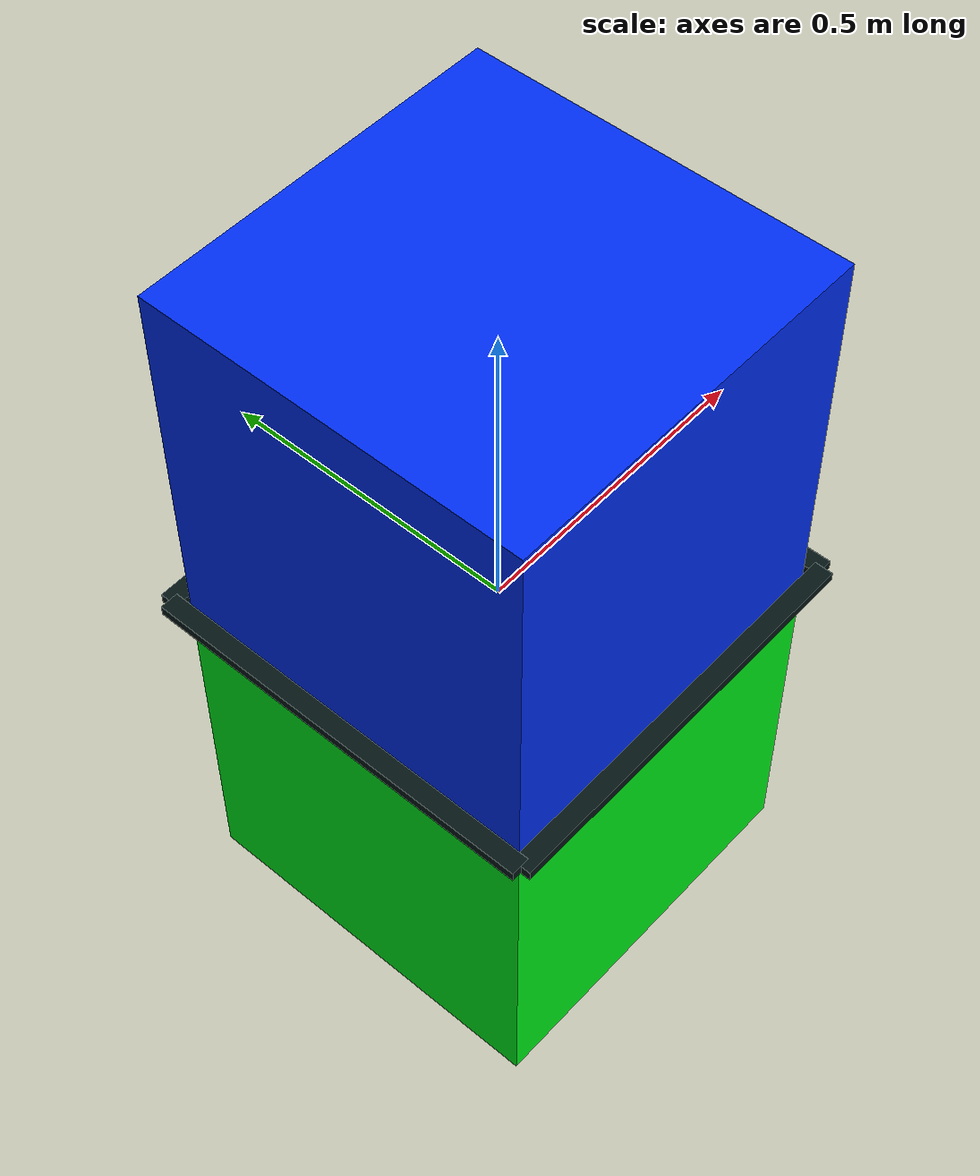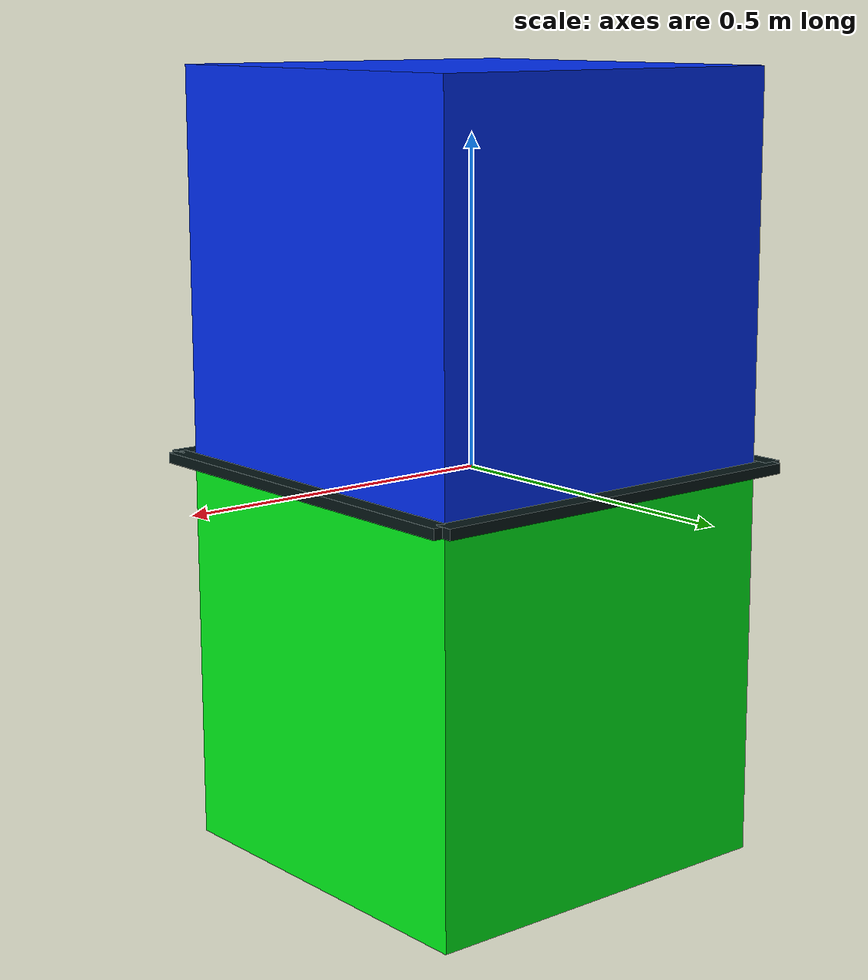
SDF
<?xml version="1.0"?>
<sdf version="1.9">
  <model name="kki_underwater_target">
    <static>true</static>
    <link name="base_link">
      <visual name="blue_box_above_water">
        <cast_shadows>true</cast_shadows>
        <pose>0 0 0.300 0 0 0</pose>
        <geometry>
          <box>
            <size>0.60 0.60 0.60</size>
          </box>
        </geometry>
        <material>
          <ambient>0.00 0.18 0.95 1</ambient>
          <diffuse>0.00 0.18 0.95 1</diffuse>
          <emissive>0.00 0.03 0.18 1</emissive>
        </material>
      </visual>
      <visual name="green_box_under_water">
        <cast_shadows>false</cast_shadows>
        <pose>0 0 -0.300 0 0 0</pose>
        <geometry>
          <box>
            <size>0.60 0.60 0.60</size>
          </box>
        </geometry>
        <material>
          <ambient>0.0 0.95 0.10 0.92</ambient>
          <diffuse>0.0 0.95 0.10 0.92</diffuse>
          <emissive>0.0 0.18 0.02 1</emissive>
        </material>
      </visual>
      <visual name="waterline_lip_front">
        <cast_shadows>false</cast_shadows>
        <pose>0 0.320 0.008 0 0 0</pose>
        <geometry>
          <box>
            <size>0.64 0.030 0.016</size>
          </box>
        </geometry>
        <material>
          <ambient>0.02 0.08 0.08 1</ambient>
          <diffuse>0.02 0.08 0.08 1</diffuse>
        </material>
      </visual>
      <visual name="waterline_lip_back">
        <cast_shadows>false</cast_shadows>
        <pose>0 -0.320 0.008 0 0 0</pose>
        <geometry><box><size>0.64 0.030 0.016</size></box></geometry>
        <material><ambient>0.02 0.08 0.08 1</ambient><diffuse>0.02 0.08 0.08 1</diffuse></material>
      </visual>
      <visual name="waterline_lip_left">
        <cast_shadows>false</cast_shadows>
        <pose>-0.320 0 0.008 0 0 0</pose>
        <geometry><box><size>0.030 0.64 0.016</size></box></geometry>
        <material><ambient>0.02 0.08 0.08 1</ambient><diffuse>0.02 0.08 0.08 1</diffuse></material>
      </visual>
      <visual name="waterline_lip_right">
        <cast_shadows>false</cast_shadows>
        <pose>0.320 0 0.008 0 0 0</pose>
        <geometry><box><size>0.030 0.64 0.016</size></box></geometry>
        <material><ambient>0.02 0.08 0.08 1</ambient><diffuse>0.02 0.08 0.08 1</diffuse></material>
      </visual>
      <collision name="collision">
        <!-- Full inverted surveillance box collision: 60 x 60 x 120 cm. -->
        <pose>0 0 0.000 0 0 0</pose>
        <geometry>
          <box>
            <size>0.60 0.60 1.20</size>
          </box>
        </geometry>
      </collision>
      <sensor name="object_contact_sensor" type="contact">
        <!-- Target box contact is reported separately from camera capture logic. -->
        <contact>
          <collision>collision</collision>
          <topic>/kki/collisions/objects</topic>
        </contact>
        <always_on>true</always_on>
        <update_rate>30</update_rate>
      </sensor>
    </link>
  </model>
</sdf>
